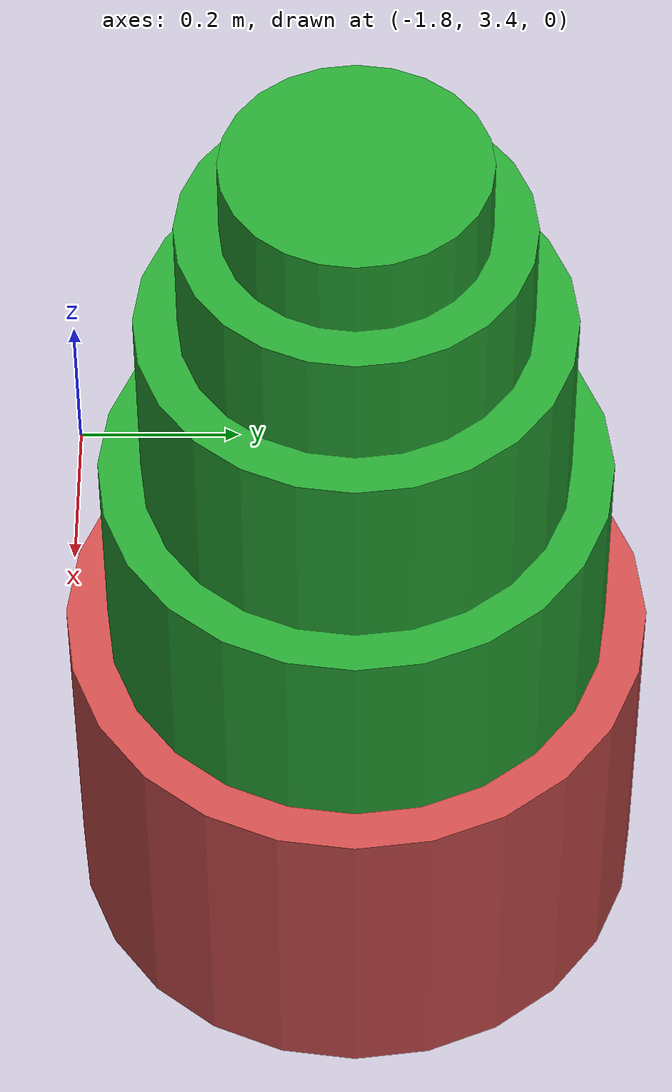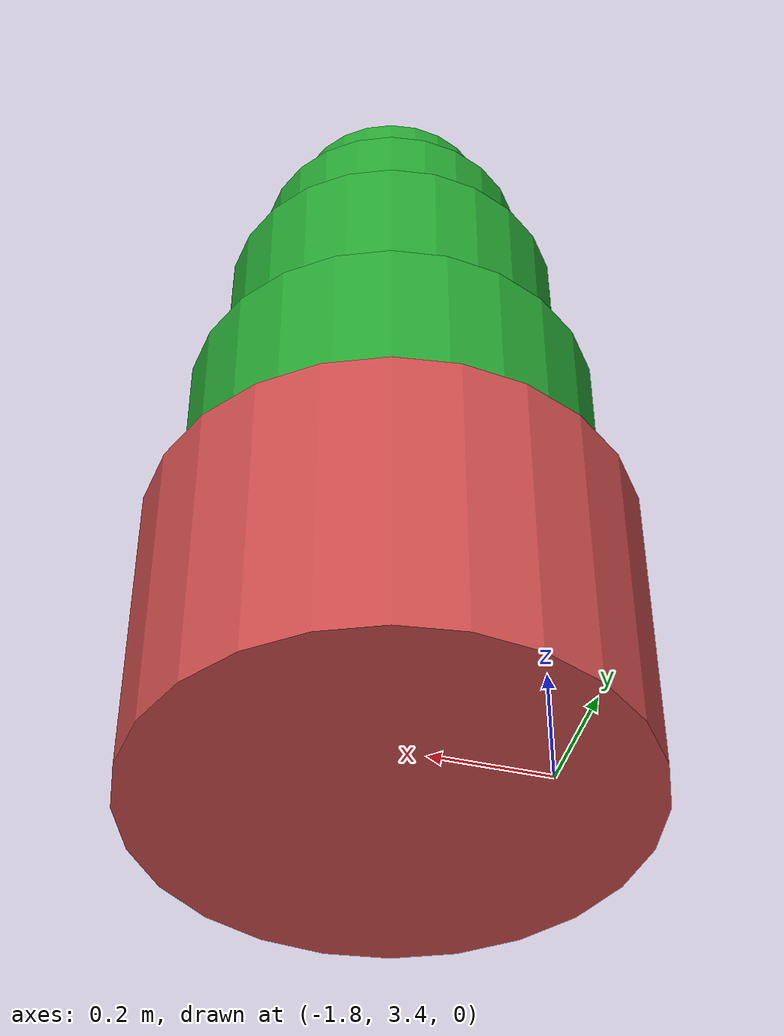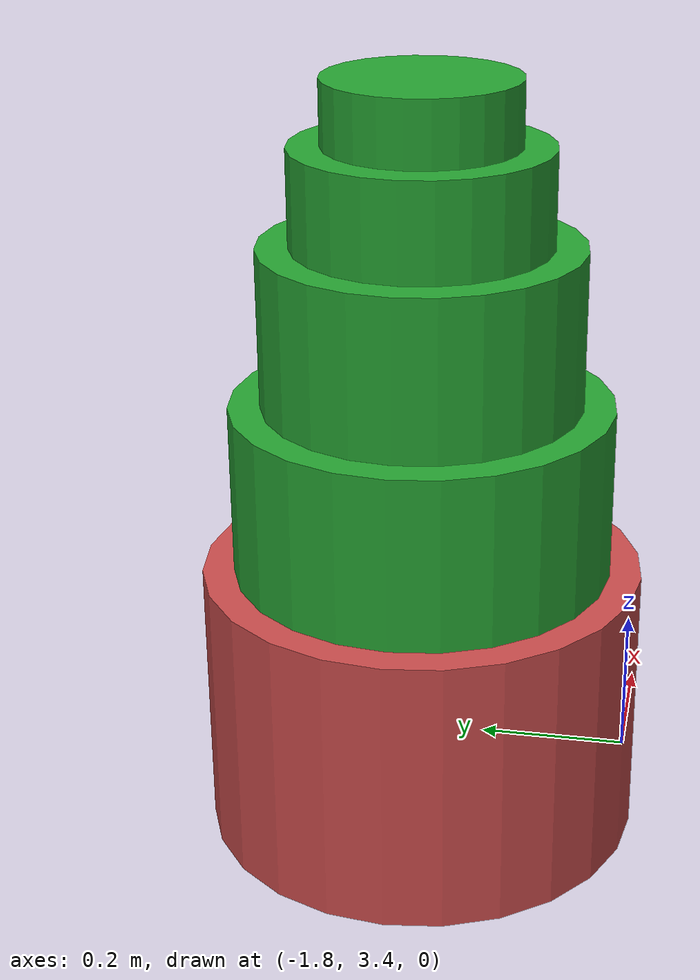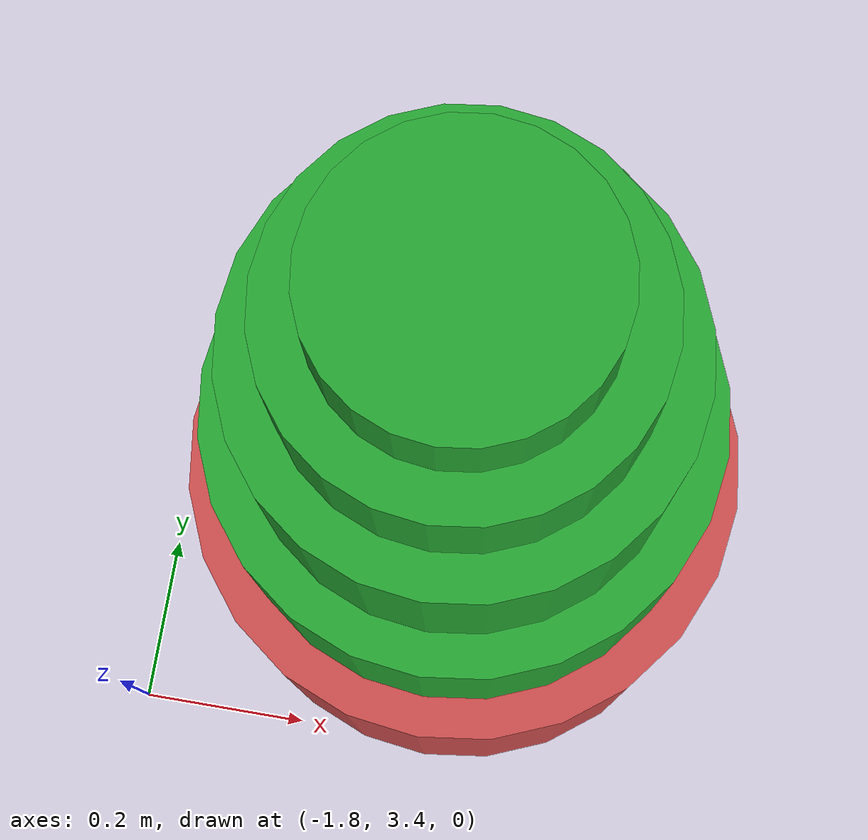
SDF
<?xml version='1.0'?>
<sdf version='1.7'>
  <model name='Tree'>
    <link name='link_2'>
      <inertial>
        <mass>1</mass>
        <inertia>
          <ixx>0.145833</ixx>
          <ixy>0</ixy>
          <ixz>0</ixz>
          <iyy>0.145833</iyy>
          <iyz>0</iyz>
          <izz>0.125</izz>
        </inertia>
        <pose>0 0 0 0 -0 0</pose>
      </inertial>
      <pose>-1.44872 3.75031 -0.14 0 -0 0</pose>
      <gravity>1</gravity>
      <self_collide>0</self_collide>
      <kinematic>0</kinematic>
      <enable_wind>0</enable_wind>
      <visual name='visual'>
        <pose>0 0 0 0 -0 0</pose>
        <geometry>
          <cylinder>
            <radius>0.35</radius>
            <length>0.45</length>
          </cylinder>
        </geometry>
        <material>
          <lighting>1</lighting>
          <script>
            <uri>file://media/materials/scripts/gazebo.material</uri>
            <name>Gazebo/Grey</name>
          </script>
          <shader type='pixel'>
            <normal_map>__default__</normal_map>
          </shader>
          <ambient>0.8 0.3 0.3 1</ambient>
          <diffuse>0.7 0.7 0.7 1</diffuse>
          <specular>0.01 0.01 0.01 1</specular>
          <emissive>0 0 0 1</emissive>
        </material>
        <transparency>0</transparency>
        <cast_shadows>1</cast_shadows>
      </visual>
      <collision name='collision'>
        <laser_retro>0</laser_retro>
        <max_contacts>10</max_contacts>
        <pose>0 0 0 0 -0 0</pose>
        <geometry>
          <cylinder>
            <radius>0.35</radius>
            <length>0.45</length>
          </cylinder>
        </geometry>
        <surface>
          <friction>
            <ode>
              <mu>1</mu>
              <mu2>1</mu2>
              <fdir1>0 0 0</fdir1>
              <slip1>0</slip1>
              <slip2>0</slip2>
            </ode>
            <torsional>
              <coefficient>1</coefficient>
              <patch_radius>0</patch_radius>
              <surface_radius>0</surface_radius>
              <use_patch_radius>1</use_patch_radius>
              <ode>
                <slip>0</slip>
              </ode>
            </torsional>
          </friction>
          <bounce>
            <restitution_coefficient>0</restitution_coefficient>
            <threshold>1e+06</threshold>
          </bounce>
          <contact>
            <collide_without_contact>0</collide_without_contact>
            <collide_without_contact_bitmask>1</collide_without_contact_bitmask>
            <collide_bitmask>1</collide_bitmask>
            <ode>
              <soft_cfm>0</soft_cfm>
              <soft_erp>0.2</soft_erp>
              <kp>1e+13</kp>
              <kd>1</kd>
              <max_vel>0.01</max_vel>
              <min_depth>0</min_depth>
            </ode>
            <bullet>
              <split_impulse>1</split_impulse>
              <split_impulse_penetration_threshold>-0.01</split_impulse_penetration_threshold>
              <soft_cfm>0</soft_cfm>
              <soft_erp>0.2</soft_erp>
              <kp>1e+13</kp>
              <kd>1</kd>
            </bullet>
          </contact>
        </surface>
      </collision>
    </link>
    <link name='link_3'>
      <inertial>
        <mass>1</mass>
        <inertia>
          <ixx>0.145833</ixx>
          <ixy>0</ixy>
          <ixz>0</ixz>
          <iyy>0.145833</iyy>
          <iyz>0</iyz>
          <izz>0.125</izz>
        </inertia>
        <pose>0 0 0 0 -0 0</pose>
      </inertial>
      <pose>-1.44872 3.75031 0.16 0 -0 0</pose>
      <gravity>1</gravity>
      <self_collide>0</self_collide>
      <kinematic>0</kinematic>
      <enable_wind>0</enable_wind>
      <visual name='visual'>
        <pose>0 0 0 0 -0 0</pose>
        <geometry>
          <cylinder>
            <radius>0.3</radius>
            <length>0.4</length>
          </cylinder>
        </geometry>
        <material>
          <lighting>1</lighting>
          <script>
            <uri>file://media/materials/scripts/gazebo.material</uri>
            <name>Gazebo/Green</name>
          </script>
          <shader type='pixel'>
            <normal_map>__default__</normal_map>
          </shader>
          <ambient>0.3 1 0.3 1</ambient>
          <diffuse>0.7 1 0.7 1</diffuse>
          <specular>0.01 0.01 0.01 1</specular>
          <emissive>0 0 0 1</emissive>
        </material>
        <transparency>0</transparency>
        <cast_shadows>1</cast_shadows>
      </visual>
      <collision name='collision'>
        <laser_retro>0</laser_retro>
        <max_contacts>10</max_contacts>
        <pose>0 0 0 0 -0 0</pose>
        <geometry>
          <cylinder>
            <radius>0.3</radius>
            <length>0.4</length>
          </cylinder>
        </geometry>
        <surface>
          <friction>
            <ode>
              <mu>1</mu>
              <mu2>1</mu2>
              <fdir1>0 0 0</fdir1>
              <slip1>0</slip1>
              <slip2>0</slip2>
            </ode>
            <torsional>
              <coefficient>1</coefficient>
              <patch_radius>0</patch_radius>
              <surface_radius>0</surface_radius>
              <use_patch_radius>1</use_patch_radius>
              <ode>
                <slip>0</slip>
              </ode>
            </torsional>
          </friction>
          <bounce>
            <restitution_coefficient>0</restitution_coefficient>
            <threshold>1e+06</threshold>
          </bounce>
          <contact>
            <collide_without_contact>0</collide_without_contact>
            <collide_without_contact_bitmask>1</collide_without_contact_bitmask>
            <collide_bitmask>1</collide_bitmask>
            <ode>
              <soft_cfm>0</soft_cfm>
              <soft_erp>0.2</soft_erp>
              <kp>1e+13</kp>
              <kd>1</kd>
              <max_vel>0.01</max_vel>
              <min_depth>0</min_depth>
            </ode>
            <bullet>
              <split_impulse>1</split_impulse>
              <split_impulse_penetration_threshold>-0.01</split_impulse_penetration_threshold>
              <soft_cfm>0</soft_cfm>
              <soft_erp>0.2</soft_erp>
              <kp>1e+13</kp>
              <kd>1</kd>
            </bullet>
          </contact>
        </surface>
      </collision>
    </link>
    <link name='link_4'>
      <inertial>
        <mass>1</mass>
        <inertia>
          <ixx>0.145833</ixx>
          <ixy>0</ixy>
          <ixz>0</ixz>
          <iyy>0.145833</iyy>
          <iyz>0</iyz>
          <izz>0.125</izz>
        </inertia>
        <pose>0 0 0 0 -0 0</pose>
      </inertial>
      <pose>-1.44872 3.75031 0.46 0 -0 0</pose>
      <gravity>1</gravity>
      <self_collide>0</self_collide>
      <kinematic>0</kinematic>
      <enable_wind>0</enable_wind>
      <visual name='visual'>
        <pose>0 0 0 0 -0 0</pose>
        <geometry>
          <cylinder>
            <radius>0.25</radius>
            <length>0.3</length>
          </cylinder>
        </geometry>
        <material>
          <lighting>1</lighting>
          <script>
            <uri>file://media/materials/scripts/gazebo.material</uri>
            <name>Gazebo/Green</name>
          </script>
          <shader type='pixel'>
            <normal_map>__default__</normal_map>
          </shader>
          <ambient>1 1 0.3 1</ambient>
          <diffuse>0.7 1 0.7 1</diffuse>
          <specular>0.01 0.01 0.01 1</specular>
          <emissive>0 0 0 1</emissive>
        </material>
        <transparency>0</transparency>
        <cast_shadows>1</cast_shadows>
      </visual>
      <collision name='collision'>
        <laser_retro>0</laser_retro>
        <max_contacts>10</max_contacts>
        <pose>0 0 0 0 -0 0</pose>
        <geometry>
          <cylinder>
            <radius>0.25</radius>
            <length>0.3</length>
          </cylinder>
        </geometry>
        <surface>
          <friction>
            <ode>
              <mu>1</mu>
              <mu2>1</mu2>
              <fdir1>0 0 0</fdir1>
              <slip1>0</slip1>
              <slip2>0</slip2>
            </ode>
            <torsional>
              <coefficient>1</coefficient>
              <patch_radius>0</patch_radius>
              <surface_radius>0</surface_radius>
              <use_patch_radius>1</use_patch_radius>
              <ode>
                <slip>0</slip>
              </ode>
            </torsional>
          </friction>
          <bounce>
            <restitution_coefficient>0</restitution_coefficient>
            <threshold>1e+06</threshold>
          </bounce>
          <contact>
            <collide_without_contact>0</collide_without_contact>
            <collide_without_contact_bitmask>1</collide_without_contact_bitmask>
            <collide_bitmask>1</collide_bitmask>
            <ode>
              <soft_cfm>0</soft_cfm>
              <soft_erp>0.2</soft_erp>
              <kp>1e+13</kp>
              <kd>1</kd>
              <max_vel>0.01</max_vel>
              <min_depth>0</min_depth>
            </ode>
            <bullet>
              <split_impulse>1</split_impulse>
              <split_impulse_penetration_threshold>-0.01</split_impulse_penetration_threshold>
              <soft_cfm>0</soft_cfm>
              <soft_erp>0.2</soft_erp>
              <kp>1e+13</kp>
              <kd>1</kd>
            </bullet>
          </contact>
        </surface>
      </collision>
    </link>
    <link name='link_5'>
      <inertial>
        <mass>1</mass>
        <inertia>
          <ixx>0.145833</ixx>
          <ixy>0</ixy>
          <ixz>0</ixz>
          <iyy>0.145833</iyy>
          <iyz>0</iyz>
          <izz>0.125</izz>
        </inertia>
        <pose>0 0 0 0 -0 0</pose>
      </inertial>
      <pose>-1.44872 3.75031 0.66 0 -0 0</pose>
      <gravity>1</gravity>
      <self_collide>0</self_collide>
      <kinematic>0</kinematic>
      <enable_wind>0</enable_wind>
      <visual name='visual'>
        <pose>0 0 0 0 -0 0</pose>
        <geometry>
          <cylinder>
            <radius>0.2</radius>
            <length>0.2</length>
          </cylinder>
        </geometry>
        <material>
          <lighting>1</lighting>
          <script>
            <uri>file://media/materials/scripts/gazebo.material</uri>
            <name>Gazebo/Green</name>
          </script>
          <shader type='pixel'>
            <normal_map>__default__</normal_map>
          </shader>
          <ambient>1 0.3 0.3 1</ambient>
          <diffuse>0.7 0.7 0.7 1</diffuse>
          <specular>0.01 0.01 0.01 1</specular>
          <emissive>0 0 0 1</emissive>
        </material>
        <transparency>0</transparency>
        <cast_shadows>1</cast_shadows>
      </visual>
      <collision name='collision'>
        <laser_retro>0</laser_retro>
        <max_contacts>10</max_contacts>
        <pose>0 0 0 0 -0 0</pose>
        <geometry>
          <cylinder>
            <radius>0.2</radius>
            <length>0.2</length>
          </cylinder>
        </geometry>
        <surface>
          <friction>
            <ode>
              <mu>1</mu>
              <mu2>1</mu2>
              <fdir1>0 0 0</fdir1>
              <slip1>0</slip1>
              <slip2>0</slip2>
            </ode>
            <torsional>
              <coefficient>1</coefficient>
              <patch_radius>0</patch_radius>
              <surface_radius>0</surface_radius>
              <use_patch_radius>1</use_patch_radius>
              <ode>
                <slip>0</slip>
              </ode>
            </torsional>
          </friction>
          <bounce>
            <restitution_coefficient>0</restitution_coefficient>
            <threshold>1e+06</threshold>
          </bounce>
          <contact>
            <collide_without_contact>0</collide_without_contact>
            <collide_without_contact_bitmask>1</collide_without_contact_bitmask>
            <collide_bitmask>1</collide_bitmask>
            <ode>
              <soft_cfm>0</soft_cfm>
              <soft_erp>0.2</soft_erp>
              <kp>1e+13</kp>
              <kd>1</kd>
              <max_vel>0.01</max_vel>
              <min_depth>0</min_depth>
            </ode>
            <bullet>
              <split_impulse>1</split_impulse>
              <split_impulse_penetration_threshold>-0.01</split_impulse_penetration_threshold>
              <soft_cfm>0</soft_cfm>
              <soft_erp>0.2</soft_erp>
              <kp>1e+13</kp>
              <kd>1</kd>
            </bullet>
          </contact>
        </surface>
      </collision>
    </link>
    <link name='link_6'>
      <inertial>
        <mass>1</mass>
        <inertia>
          <ixx>0.145833</ixx>
          <ixy>0</ixy>
          <ixz>0</ixz>
          <iyy>0.145833</iyy>
          <iyz>0</iyz>
          <izz>0.125</izz>
        </inertia>
        <pose>0 0 0 0 -0 0</pose>
      </inertial>
      <pose>-1.44872 3.75031 0.81 0 -0 0</pose>
      <gravity>1</gravity>
      <self_collide>0</self_collide>
      <kinematic>0</kinematic>
      <enable_wind>0</enable_wind>
      <visual name='visual'>
        <pose>0 0 0 0 -0 0</pose>
        <geometry>
          <cylinder>
            <radius>0.15</radius>
            <length>0.1</length>
          </cylinder>
        </geometry>
        <material>
          <lighting>1</lighting>
          <script>
            <uri>file://media/materials/scripts/gazebo.material</uri>
            <name>Gazebo/Green</name>
          </script>
          <shader type='pixel'>
            <normal_map>__default__</normal_map>
          </shader>
          <ambient>0.3 0.3 1 1</ambient>
          <diffuse>0.7 0.7 0.7 1</diffuse>
          <specular>0.01 0.01 0.01 1</specular>
          <emissive>0 0 0 1</emissive>
        </material>
        <transparency>0</transparency>
        <cast_shadows>1</cast_shadows>
      </visual>
      <collision name='collision'>
        <laser_retro>0</laser_retro>
        <max_contacts>10</max_contacts>
        <pose>0 0 0 0 -0 0</pose>
        <geometry>
          <cylinder>
            <radius>0.15</radius>
            <length>0.1</length>
          </cylinder>
        </geometry>
        <surface>
          <friction>
            <ode>
              <mu>1</mu>
              <mu2>1</mu2>
              <fdir1>0 0 0</fdir1>
              <slip1>0</slip1>
              <slip2>0</slip2>
            </ode>
            <torsional>
              <coefficient>1</coefficient>
              <patch_radius>0</patch_radius>
              <surface_radius>0</surface_radius>
              <use_patch_radius>1</use_patch_radius>
              <ode>
                <slip>0</slip>
              </ode>
            </torsional>
          </friction>
          <bounce>
            <restitution_coefficient>0</restitution_coefficient>
            <threshold>1e+06</threshold>
          </bounce>
          <contact>
            <collide_without_contact>0</collide_without_contact>
            <collide_without_contact_bitmask>1</collide_without_contact_bitmask>
            <collide_bitmask>1</collide_bitmask>
            <ode>
              <soft_cfm>0</soft_cfm>
              <soft_erp>0.2</soft_erp>
              <kp>1e+13</kp>
              <kd>1</kd>
              <max_vel>0.01</max_vel>
              <min_depth>0</min_depth>
            </ode>
            <bullet>
              <split_impulse>1</split_impulse>
              <split_impulse_penetration_threshold>-0.01</split_impulse_penetration_threshold>
              <soft_cfm>0</soft_cfm>
              <soft_erp>0.2</soft_erp>
              <kp>1e+13</kp>
              <kd>1</kd>
            </bullet>
          </contact>
        </surface>
      </collision>
    </link>
    <joint name='link_2_JOINT_2' type='fixed'>
      <parent>link_2</parent>
      <child>link_3</child>
      <pose>0 0 0 0 -0 0</pose>
      <physics>
        <ode>
          <limit>
            <cfm>0</cfm>
            <erp>0.2</erp>
          </limit>
          <suspension>
            <cfm>0</cfm>
            <erp>0.2</erp>
          </suspension>
        </ode>
      </physics>
    </joint>
    <joint name='link_3_JOINT_3' type='fixed'>
      <parent>link_3</parent>
      <child>link_4</child>
      <pose>0 0 0 0 -0 0</pose>
      <physics>
        <ode>
          <limit>
            <cfm>0</cfm>
            <erp>0.2</erp>
          </limit>
          <suspension>
            <cfm>0</cfm>
            <erp>0.2</erp>
          </suspension>
        </ode>
      </physics>
    </joint>
    <joint name='link_4_JOINT_4' type='fixed'>
      <parent>link_4</parent>
      <child>link_5</child>
      <pose>0 0 0 0 -0 0</pose>
      <physics>
        <ode>
          <limit>
            <cfm>0</cfm>
            <erp>0.2</erp>
          </limit>
          <suspension>
            <cfm>0</cfm>
            <erp>0.2</erp>
          </suspension>
        </ode>
      </physics>
    </joint>
    <joint name='link_5_JOINT_5' type='fixed'>
      <parent>link_5</parent>
      <child>link_6</child>
      <pose>0 0 0 0 -0 0</pose>
      <physics>
        <ode>
          <limit>
            <cfm>0</cfm>
            <erp>0.2</erp>
          </limit>
          <suspension>
            <cfm>0</cfm>
            <erp>0.2</erp>
          </suspension>
        </ode>
      </physics>
    </joint>
    <static>0</static>
    <allow_auto_disable>1</allow_auto_disable>
  </model>
</sdf>
